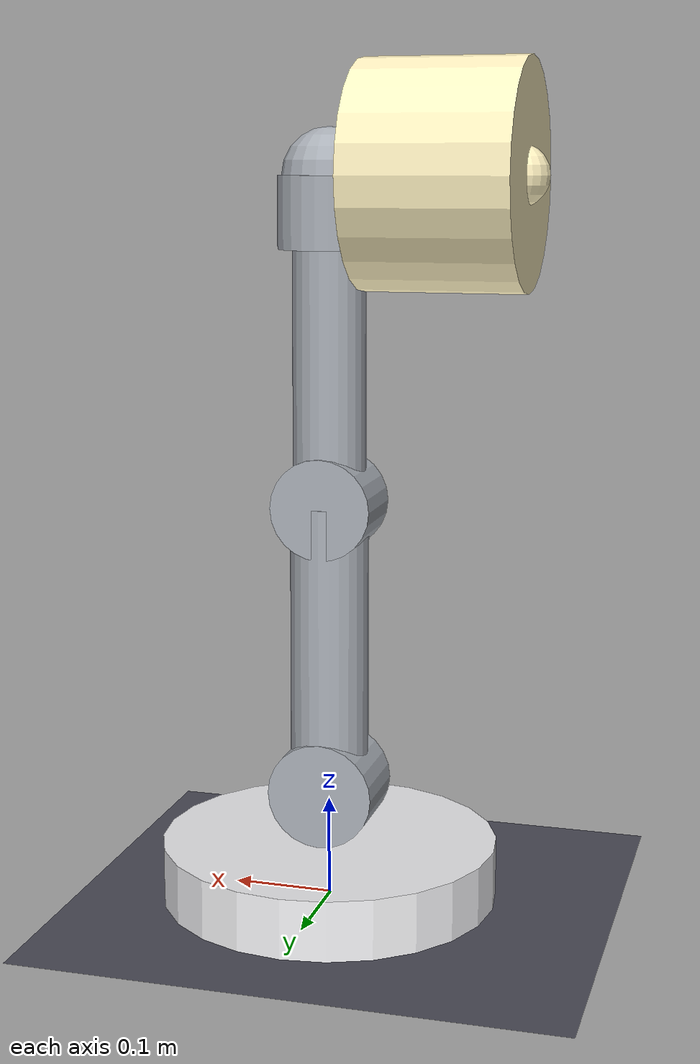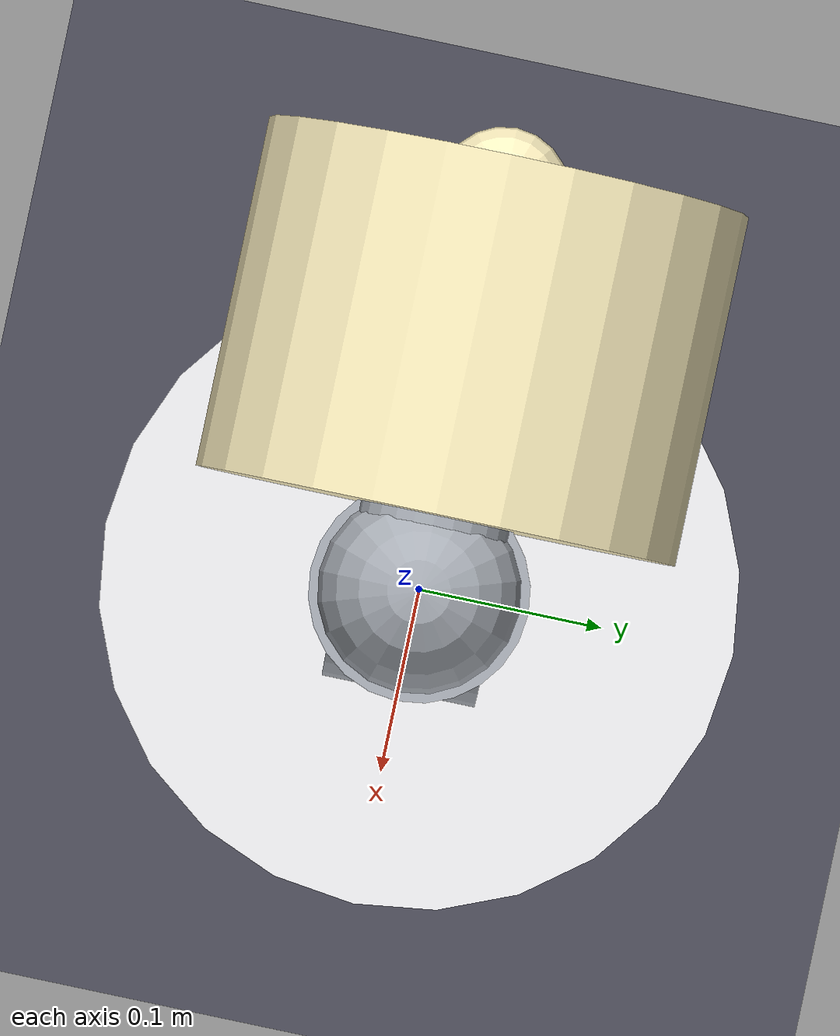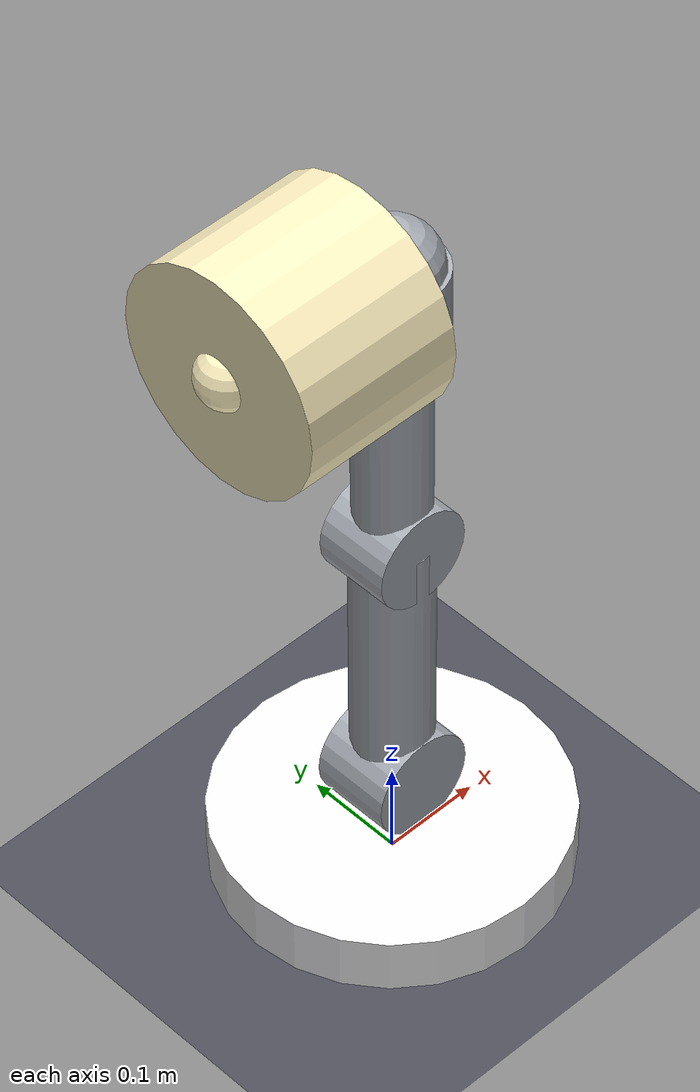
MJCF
<mujoco model="dummy_character_lamp_5dof">
  <compiler angle="radian"/>

  <visual>
    <global offwidth="1280" offheight="960"/>
  </visual>

  <asset>
    <mesh name="lamp_shade_bin" content_type="model/stl" file="lamp_shade_bin.stl"/>
  </asset>

  <worldbody>
    <light name="top" pos="0 0 1"/>
    <geom name="floor" type="plane" size="2 2 0.1" pos="0 0 0" rgba="0.3 0.3 0.35 1"/>
    <geom size="0.17 0.03" pos="0 0 0.03" type="cylinder" contype="0" conaffinity="0" group="1" density="0" rgba="0.94 0.94 0.95 1"/>
    <geom size="0.17 0.03" pos="0 0 0.03" type="cylinder" rgba="0.94 0.94 0.95 1"/>
    <body name="turntable_link" pos="0 0 0.06">
      <inertial pos="0 0 0.025" quat="0.5 0.5 -0.5 0.5" mass="0.35" diaginertia="0.000237 0.000148 0.000148"/>
      <joint name="base_yaw_joint" pos="0 0 0" axis="0 0 1" range="-2.6 2.6" actuatorfrcrange="-6 6" damping="0.18" frictionloss="0.08"/>
      <body name="lower_arm_link" pos="0 0 0.055">
        <inertial pos="0 0 0.145" mass="0.95" diaginertia="0.006945 0.006945 0.000931"/>
        <joint name="shoulder_pitch_joint" pos="0 0 0" axis="0 1 0" range="-0.75 1.05" actuatorfrcrange="-12 12" damping="0.28" frictionloss="0.12"/>
        <geom size="0.025 0.145" pos="0 0 0.145" type="cylinder" contype="0" conaffinity="0" group="1" density="0" rgba="0.94 0.94 0.95 1"/>
        <geom size="0.053 0.04" quat="0.707107 0.707107 0 0" type="cylinder" contype="0" conaffinity="0" group="1" density="0" rgba="0.66 0.68 0.71 1"/>
        <geom size="0.035 0.015" pos="0 0 0.025" type="cylinder" contype="0" conaffinity="0" group="1" density="0" rgba="0.66 0.68 0.71 1"/>
        <geom size="0.035 0.015" pos="0 0 0.265" type="cylinder" contype="0" conaffinity="0" group="1" density="0" rgba="0.66 0.68 0.71 1"/>
        <geom size="0.039 0.145" pos="0 0 0.145" type="cylinder" rgba="0.66 0.68 0.71 1"/>
        <body name="upper_arm_link" pos="0 0 0.29">
          <inertial pos="0 0 0.125" mass="0.72" diaginertia="0.003807 0.003807 0.000737"/>
          <joint name="elbow_pitch_joint" pos="0 0 0" axis="0 1 0" range="-1.85 0.4" actuatorfrcrange="-9 9" damping="0.24" frictionloss="0.1"/>
          <geom size="0.024 0.125" pos="0 0 0.125" type="cylinder" contype="0" conaffinity="0" group="1" density="0" rgba="0.94 0.94 0.95 1"/>
          <geom size="0.05 0.038" quat="0.707107 0.707107 0 0" type="cylinder" contype="0" conaffinity="0" group="1" density="0" rgba="0.66 0.68 0.71 1"/>
          <geom size="0.033 0.014" pos="0 0 0.023" type="cylinder" contype="0" conaffinity="0" group="1" density="0" rgba="0.66 0.68 0.71 1"/>
          <geom size="0.033 0.014" pos="0 0 0.227" type="cylinder" contype="0" conaffinity="0" group="1" density="0" rgba="0.66 0.68 0.71 1"/>
          <geom size="0.036 0.125" pos="0 0 0.125" type="cylinder" rgba="0.66 0.68 0.71 1"/>
          <body name="neck_link" pos="0 0 0.25">
            <inertial pos="0 0 0.035" quat="0.5 0.5 -0.5 0.5" mass="0.26" diaginertia="0.00039 0.000323 0.000281"/>
            <joint name="neck_yaw_joint" pos="0 0 0" axis="0 0 1" range="-1.35 1.35" actuatorfrcrange="-3.5 3.5" damping="0.12" frictionloss="0.05"/>
            <geom size="0.043 0.035" pos="0 0 0.035" type="cylinder" contype="0" conaffinity="0" group="1" density="0" rgba="0.66 0.68 0.71 1"/>
            <geom size="0.05 0.035" pos="0 0 0.035" type="cylinder" rgba="0.66 0.68 0.71 1"/>
            <body name="head_gimbal_link" pos="0 0 0.07" quat="0 0 0 1">
              <light name="lamp_light" pos="0.113 0 0" dir="1 0 0"/>
              <camera name="lamp_camera" pos="0.050 0 -0.090"/>
              <inertial pos="0.111316 0 0" quat="0 0.707107 0 0.707107" mass="0.76" diaginertia="0.00479268 0.00472068 0.002519"/>
              <joint name="head_pitch_joint" pos="0 0 0" axis="0 1 0" range="-0.9 0.7" actuatorfrcrange="-3.2 3.2" damping="0.1" frictionloss="0.04"/>
              <geom size="0.027 0.035" pos="0.035 0 0" quat="0.707107 0 0.707107 0" type="cylinder" contype="0" conaffinity="0" group="1" density="0" rgba="0.66 0.68 0.71 1"/>
              <geom size="0.046" contype="0" conaffinity="0" group="1" density="0" rgba="0.66 0.68 0.71 1"/>
              <geom size="0.034 0.035" pos="0.035 0 0" quat="0.707107 0 0.707107 0" type="cylinder" rgba="0.66 0.68 0.71 1"/>
              <geom pos="0.07 0 0" type="mesh" contype="0" conaffinity="0" group="1" density="0" rgba="0.94 0.94 0.95 1" mesh="lamp_shade_bin"/>
              <geom size="0.09 0.003" pos="0.178 0 0" quat="0.707107 0 0.707107 0" type="cylinder" contype="0" conaffinity="0" group="1" density="0" rgba="1 0.95 0.76 0.95"/>
              <geom size="0.11 0.08" pos="0.115 0 0" quat="0.707107 0 0.707107 0" type="cylinder" rgba="1 0.95 0.76 0.95"/>
              <geom size="0.03" pos="0.183 0 0" contype="0" conaffinity="0" group="1" density="0" rgba="1 0.95 0.76 0.95"/>
              <geom size="0.012 0.009" pos="0.12 0 -0.09" quat="0.707107 0 0.707107 0" type="cylinder" contype="0" conaffinity="0" group="1" density="0" rgba="0.06 0.07 0.08 1"/>
            </body>
          </body>
        </body>
      </body>
    </body>
  </worldbody>
</mujoco>
